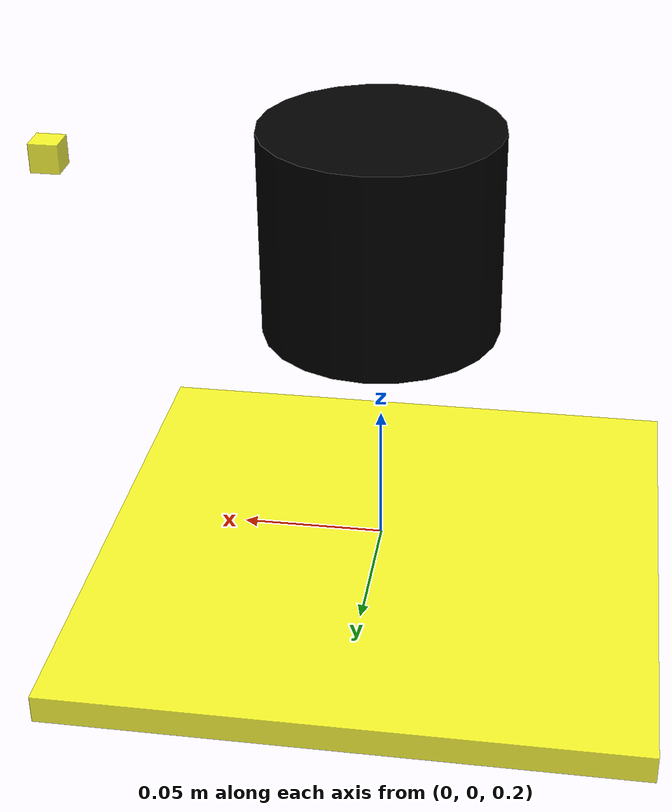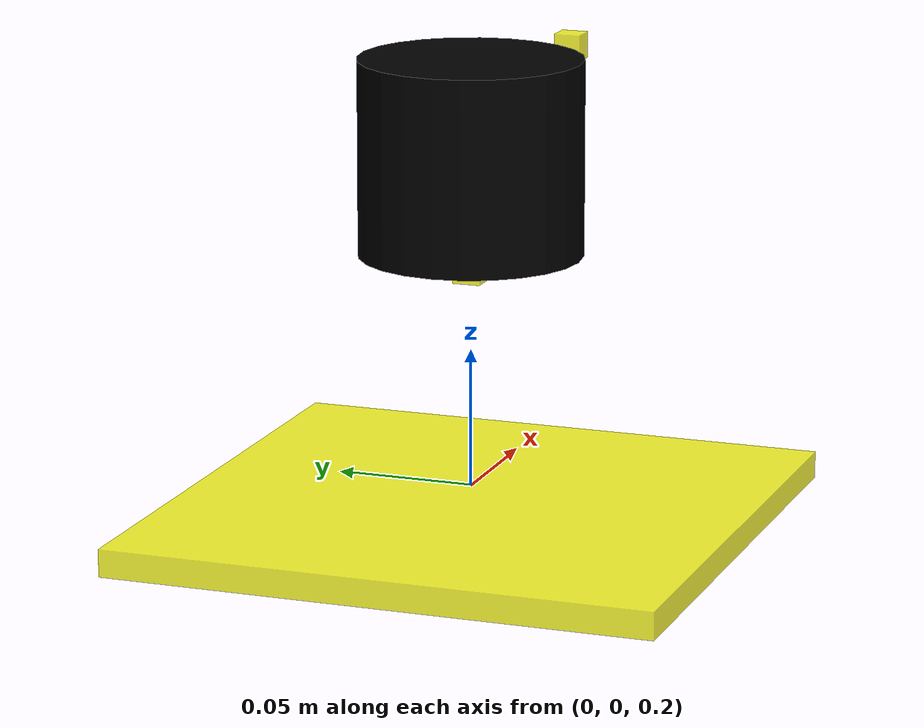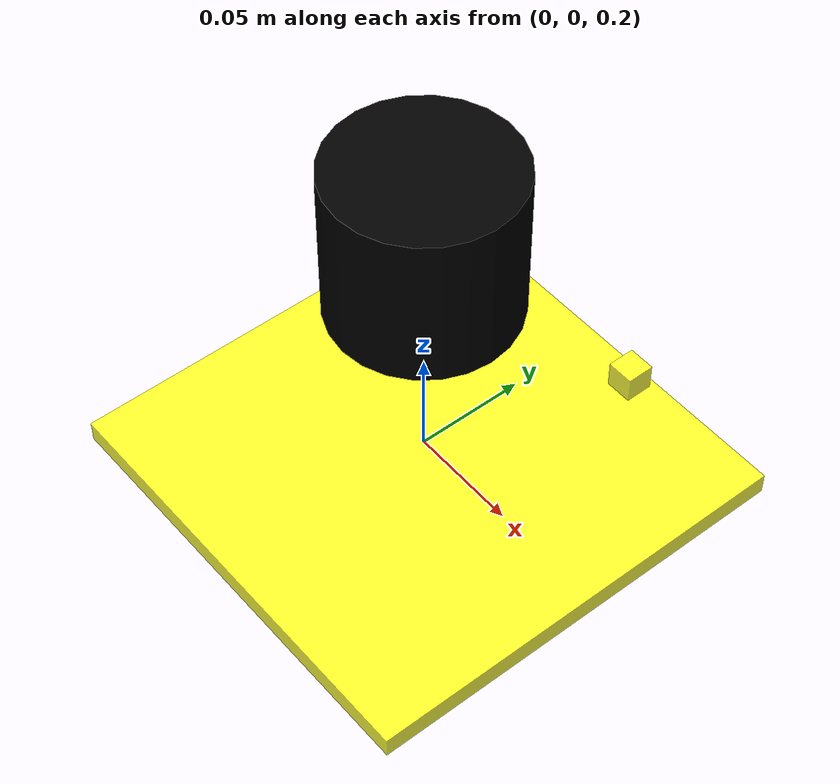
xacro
<?xml version="1.0"?>
<robot name="gm_robot_1" xmlns:xacro="http://ros.org/wiki/xacro" xmlns:fishros="http://fishros.com">
  <xacro:include filename="../xacro_template.xacro" />
  <link name="base_footprint"/>

  <link name="base_link">

    <xacro:box_visual w="0.2" d="0.2" h="0.01" origin_x_axis="0" origin_y_axis="0" origin_z_axis="0.1" origin_r="0" origin_p="0" origin_y="0">
    </xacro:box_visual>

  </link>

  <joint name="base_joint" type="fixed">
    <parent link="base_footprint"/>
    <child link="base_link"/>
    <origin rpy="0 0 0" xyz="0 0 0.09"/>
  </joint>

  <link name="laser_link">

    <xacro:cylinder_visual r="0.04" h="0.07" origin_x_axis="0" origin_y_axis="0" origin_z_axis="0.12" origin_r="0" origin_p="0" origin_y="0">
    </xacro:cylinder_visual>

  </link>

  <joint name="laser_joint" type="fixed">
    <parent link="base_link"/>
    <child link="laser_link"/>
    <origin rpy="0 0 0" xyz="0 0 0.11"/>
  </joint>

    <!-- IMU Link -->
  <link name="imu_link">

    <xacro:box_visual w="0.01" d="0.01" h="0.01" origin_x_axis="0" origin_y_axis="0" origin_z_axis="0.1" origin_r="0" origin_p="0" origin_y="0">
    </xacro:box_visual>

  </link>

  <joint name="imu_joint" type="fixed">
    <parent link="base_link"/>
    <child link="imu_link"/>
    <origin rpy="0 0 0" xyz="0 0 0.09"/>  <!-- 根据实际位置调整 -->
  </joint>

  <!-- Camera Link -->
  <link name="camera_link">

    <xacro:box_visual w="0.01" d="0.01" h="0.01" origin_x_axis="0.06" origin_y_axis="0" origin_z_axis="0.13" origin_r="0" origin_p="${pi/2}" origin_y="0">
    </xacro:box_visual>

  </link>

  <joint name="camera_joint" type="fixed">
    <parent link="base_link"/>
    <child link="camera_link"/>
    <origin rpy="0 0 0" xyz="0.05 0 0.12"/>  <!-- 根据实际位置调整 -->
  </joint>

</robot>

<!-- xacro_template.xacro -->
<robot xmlns:xacro="http://ros.org/wiki/xacro" xmlns:fishros="http://fishros.com">
  <xacro:macro name="box_inertia" params="m w h d origin_x_axis origin_y_axis origin_z_axis origin_r origin_p origin_y">
    <inertial>
      <origin xyz="${origin_x_axis} ${origin_y_axis} ${origin_z_axis}" rpy="${origin_r} ${origin_p} ${origin_y}"/>
      <mass value="${m}"/>
      <inertia ixx="${(m/12) * (h*h + d*d)}" ixy="0.0" ixz="0.0" iyy="${(m/12) * (w*w + d*d)}" iyz="0.0" izz="${(m/12) * (w*w + h*h)}"/>
    </inertial>
  </xacro:macro>

  <xacro:macro name="cylinder_inertia" params="m r h origin_x_axis origin_y_axis origin_z_axis origin_r origin_p origin_y">
    <inertial>
      <origin xyz="${origin_x_axis} ${origin_y_axis} ${origin_z_axis}" rpy="${origin_r} ${origin_p} ${origin_y}" />
      <mass value="${m}"/>
      <inertia ixx="${(m/12) * (3*r*r + h*h)}" ixy = "0" ixz = "0" iyy="${(m/12) * (3*r*r + h*h)}" iyz = "0" izz="${(m/2) * (r*r)}"/>
    </inertial>
  </xacro:macro>

  <xacro:macro name="sphere_inertia" params="m r origin_x_axis origin_y_axis origin_z_axis">
    <inertial>
      <origin xyz="${origin_x_axis} ${origin_y_axis} ${origin_z_axis}"/>
      <mass value="${m}"/>
      <inertia ixx="${(2/5) * m * (r*r)}" ixy="0.0" ixz="0.0" iyy="${(2/5) * m * (r*r)}" iyz="0.0" izz="${(2/5) * m * (r*r)}"/>
    </inertial>
  </xacro:macro>

  <xacro:macro name="sphere_visual" params="r origin_x_axis origin_y_axis origin_z_axis">
    <visual>
      <origin xyz="${origin_x_axis} ${origin_y_axis} ${origin_z_axis}"/>
      <geometry>
          <sphere radius="${r}"/>
      </geometry>
      <material name="blue">
        <color rgba="0.0 0.0 0.8 1.0"/>
      </material>
    </visual>
  </xacro:macro>

<xacro:macro name="sphere_collision" params="r origin_x_axis origin_y_axis origin_z_axis">
    <collision>
      <origin xyz="${origin_x_axis} ${origin_y_axis} ${origin_z_axis}"/>
      <geometry>
          <sphere radius="${r}"/>
      </geometry>
      <material name="blue">
        <color rgba="0.0 0.0 0.8 1.0"/>
      </material>
    </collision>
</xacro:macro>

<xacro:macro name="box_visual" params="w d h origin_x_axis origin_y_axis origin_z_axis origin_r origin_p origin_y">
    <visual>
      <origin xyz="${origin_x_axis} ${origin_y_axis} ${origin_z_axis}" rpy="${origin_r} ${origin_p} ${origin_y}"/>
      <geometry>
          <box size="${w} ${d} ${h}" />
      </geometry>
      <material name="yellow">
        <color rgba="1.0 1.0 0 0.8" />
      </material>
    </visual>
</xacro:macro>

<xacro:macro name="box_collision" params="w d h origin_x_axis origin_y_axis origin_z_axis origin_r origin_p origin_y">
    <collision>
      <origin xyz="${origin_x_axis} ${origin_y_axis} ${origin_z_axis}" rpy="${origin_r} ${origin_p} ${origin_y}"/>
      <geometry>
          <box size="${w} ${d} ${h}" />
      </geometry>
      <material name="blue">
        <color rgba="0.0 0.0 0.8 1.0"/>
      </material>
    </collision>
</xacro:macro>

<xacro:macro name="cylinder_visual" params="r h origin_x_axis origin_y_axis origin_z_axis origin_r origin_p origin_y">
    <visual>
      <origin xyz="${origin_x_axis} ${origin_y_axis} ${origin_z_axis}" rpy="${origin_r} ${origin_p} ${origin_y}"/>
      <geometry>
         <cylinder length="${h}" radius="${r}"/>
      </geometry>
      <material name="black">
    <color rgba="0 0 0 1" />
    </material>
    </visual>
</xacro:macro>

<xacro:macro name="cylinder_collision" params="r h origin_x_axis origin_y_axis origin_z_axis origin_r origin_p origin_y">
    <collision>
      <origin xyz="${origin_x_axis} ${origin_y_axis} ${origin_z_axis}" rpy="${origin_r} ${origin_p} ${origin_y}"/>
      <geometry>
         <cylinder length="${h}" radius="${r}"/>
      </geometry>
      <material name="blue">
        <color rgba="0.0 0.0 0.8 1.0"/>
      </material>
    </collision>
</xacro:macro>

</robot>
